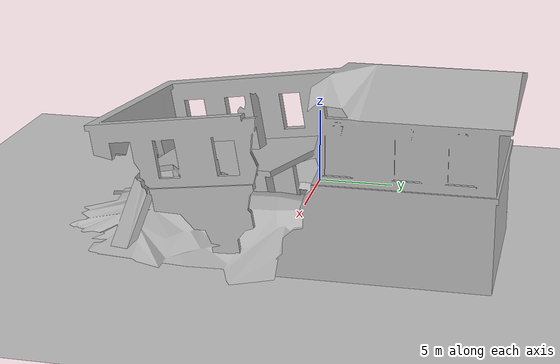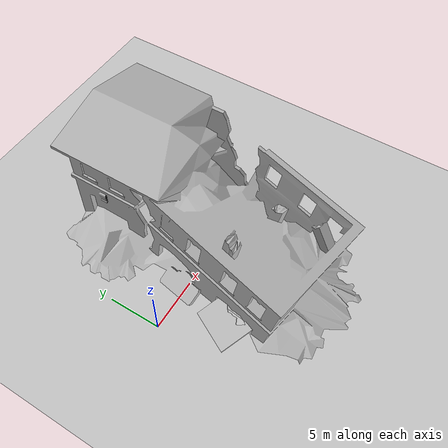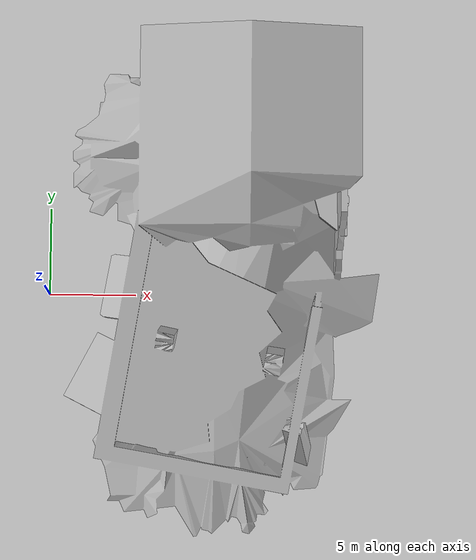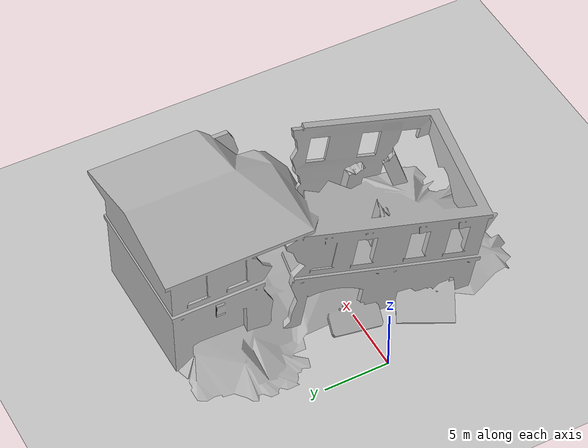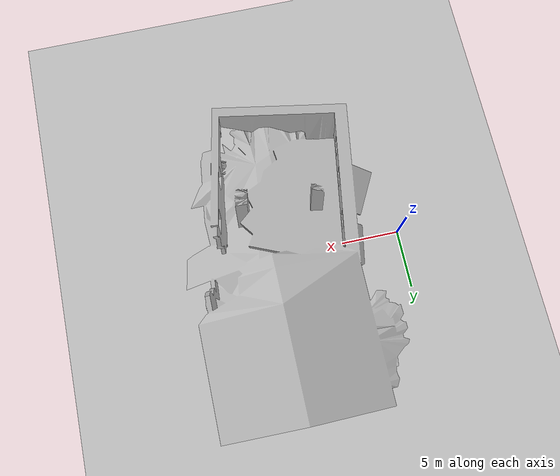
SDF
<?xml version="1.0" ?>
<sdf version='1.4'>
  <world name='default'>

    <physics name='default_physics' default='0' type='ode'>
      <gravity>0 0 -9.8066</gravity>
      <ode>
        <solver>
          <type>quick</type>
          <iters>10</iters>
          <sor>1.3</sor>
          <use_dynamic_moi_rescaling>0</use_dynamic_moi_rescaling>
        </solver>
        <constraints>
          <cfm>0</cfm>
          <erp>0.2</erp>
          <contact_max_correcting_vel>100</contact_max_correcting_vel>
          <contact_surface_layer>0.001</contact_surface_layer>
        </constraints>
      </ode>
      <max_step_size>0.004</max_step_size>
      <real_time_factor>1</real_time_factor>
      <real_time_update_rate>250</real_time_update_rate>
      <magnetic_field>6.0e-6 2.3e-5 -4.2e-5</magnetic_field>
    </physics>

    <spherical_coordinates>
      <surface_model>EARTH_WGS84</surface_model>
      <latitude_deg>0</latitude_deg>
      <longitude_deg>0</longitude_deg>
      <elevation>0</elevation>
      <heading_deg>0</heading_deg>
    </spherical_coordinates>

  <include>
      <pose>0 0 0 0 0 0</pose>
      <uri>model://ground_plane</uri>
   </include>

    <!-- A global light source -->
   <scene>
      <sky>
        <clouds>
          <speed>12</speed>
        </clouds>
      </sky>
   </scene>

    <include>
      <uri>model://sun</uri>
    </include>

<model name="fire_station">
    <static>true</static>
    <pose>0 0 0 0 0 0</pose>
    <link name="body">
   <visual name="visual">
  <pose>10 0 0 0 0 -1.57</pose>
        <geometry>
          <mesh>
            <uri>model://collapsed_fire_station/meshes/collapsed_fire_station.dae</uri>
          </mesh>
        </geometry>
        <cast_shadows>true</cast_shadows>
      </visual>
  <collision name="collision">
    <pose>10 0 0 0 0 -1.57</pose>
       <geometry>
          <mesh>
            <uri>model://collapsed_fire_station/meshes/collapsed_fire_station.dae</uri>
          </mesh>
        </geometry>
      </collision>
    </link>
  </model>

<model name="human">
    <static>true</static>
   <pose>12 9 5.3 0 3.14 -1.57</pose>
    <link name="body">
   <visual name="visual">
        <geometry>
          <mesh>
            <uri>model://human_resting_description/meshes/man_resting.dae</uri>
          </mesh>
        </geometry>
        <cast_shadows>true</cast_shadows>
      </visual>
  <collision name="collision">
       <geometry>
          <mesh>
            <uri>model://human_resting_description/meshes/man_resting.dae</uri>
          </mesh>
        </geometry>
      </collision>
    </link>
  </model>

<!-- camera to follow the uav-->
<!-- choose the right name of the model: iris_camera, iris_0, iris_1-->
    <gui fullscreen='0'>
     <camera name="user_camera">
        <track_visual>
          <name>iris_1</name>
          <static>false</static>
          <min_dist>1.0</min_dist>
          <max_dist>2.0</max_dist>
          <use_model_frame>true</use_model_frame>
          <xyz>-1.0 0 0</xyz>
          <inherit_yaw>true</inherit_yaw>
        </track_visual>
    </camera>
</gui>

  </world>
</sdf>
